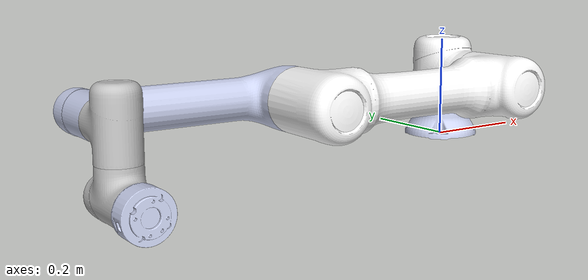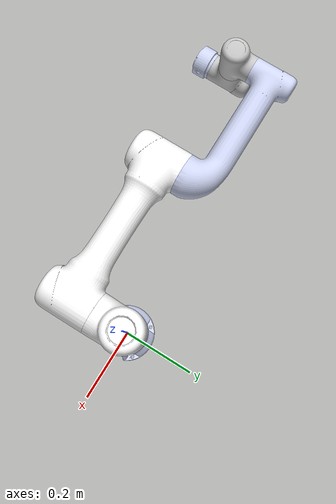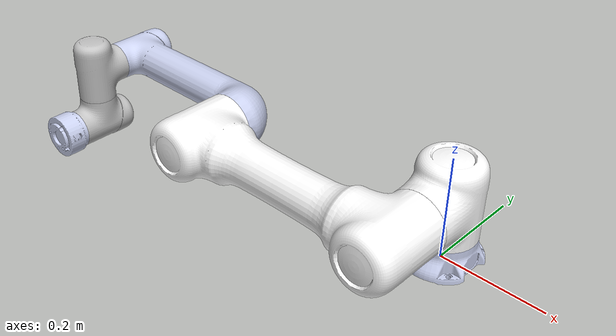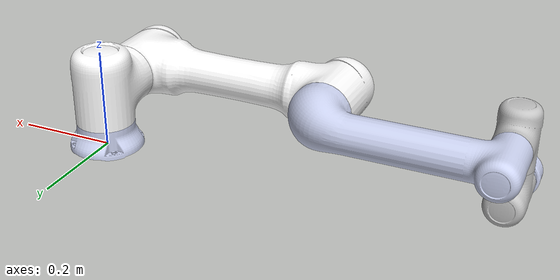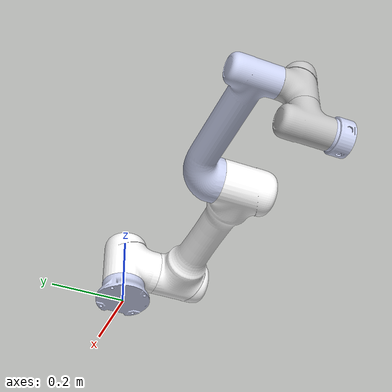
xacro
<robot
  name="S05" xmlns:xacro="http://www.ros.org/wiki/xacro">

  <xacro:include filename="$(find elfin_description)/urdf/materials.xacro" />

  <xacro:include filename="$(find elfin_description)/urdf/elfin_robot.gazebo" />

  <xacro:include filename="$(find elfin_description)/urdf/elfin_transmission.xacro" />

  <xacro:property name="PI" value="3.1415926535897931"/>

  <xacro:property name="density" value="3.09"/>

  <link name="world"/>

  <joint name="world_base" type="fixed">
    <origin
      xyz="0 0 0"
      rpy="0 0 0" />
    <parent
      link="world" />
    <child
      link="elfin_base_link" />
  </joint>

  <link name="elfin_base_link"/>

  <joint name="elfin_base_joint" type="fixed">
    <origin
      xyz="0 0 0"
      rpy="0 0 0" />
    <parent
      link="elfin_base_link" />
    <child
      link="elfin_base" />
  </joint>

  <link
    name="elfin_base">
    <inertial>
      <origin
        xyz="-0.00184437389934045 -6.59500650089517E-06 0.0222886005498919"
        rpy="0 0 0" />
      <mass
        value="0.55783758117095" />
      <inertia
        ixx="0.000806700377609497"
        ixy="6.54161076767138E-09"
        ixz="-9.10804623758884E-06"
        iyy="0.000742642782949531"
        iyz="-6.64350030616068E-08"
        izz="0.00132758561895542" />
    </inertial>
    <visual>
      <origin
        xyz="0 0 0"
        rpy="0 0 0" />
      <geometry>
        <mesh
          filename="package://elfin_description/meshes/S05/base_link.STL" />
      </geometry>
      <material
        name="">
        <color
          rgba="0.792156862745098 0.819607843137255 0.933333333333333 1" />
      </material>
    </visual>
    <collision>
      <origin
        xyz="0 0 0"
        rpy="0 0 0" />
      <geometry>
        <mesh
          filename="package://elfin_description/meshes/S05/base_link.STL" />
      </geometry>
    </collision>
  </link>
  <link
    name="elfin_link1">
    <inertial>
      <origin
        xyz="2.33055077716871E-06 -0.00901454466097123 0.0158738587496875"
        rpy="0 0 0" />
      <mass
        value="2.36455557143755" />
      <inertia
        ixx="0.00451183160259451"
        ixy="-3.26792558903691E-08"
        ixz="7.26054886062041E-08"
        iyy="0.00390660442055615"
        iyz="0.00049262309508953"
        izz="0.00502354133713084" />
    </inertial>
    <visual>
      <origin
        xyz="0 0 0"
        rpy="0 0 0" />
      <geometry>
        <mesh
          filename="package://elfin_description/meshes/S05/elfin_link1.STL" />
      </geometry>
      <material
        name="">
        <color
          rgba="1 1 1 1" />
      </material>
    </visual>
    <collision>
      <origin
        xyz="0 0 0"
        rpy="0 0 0" />
      <geometry>
        <mesh
          filename="package://elfin_description/meshes/S05/elfin_link1.STL" />
      </geometry>
    </collision>
  </link>
  <joint
    name="elfin_joint1"
    type="revolute">
    <origin
      xyz="0 0 0.1215"
      rpy="0 0 0" />
    <parent
      link="elfin_base" />
    <child
      link="elfin_link1" />
    <axis
      xyz="0 0 1" />
  <limit
      lower="-6.28"
      upper="6.28"
      effort="200"
      velocity="1.57" />
  </joint>
  <link
    name="elfin_link2">
    <inertial>
      <origin
        xyz="-0.215001381391909 1.2409870353558E-10 0.0117543388669855"
        rpy="0 0 0" />
      <mass
        value="6.38655762886868" />
      <inertia
        ixx="0.00942144948642947"
        ixy="5.76449595464818E-08"
        ixz="2.12022015866971E-08"
        iyy="0.0224664860505062"
        iyz="-4.19181341688528E-09"
        izz="0.0235010077945909" />
    </inertial>
    <visual>
      <origin
        xyz="0 0 0"
        rpy="0 0 0" />
      <geometry>
        <mesh
          filename="package://elfin_description/meshes/S05/elfin_link2.STL" />
      </geometry>
      <material
        name="">
        <color
          rgba="1 1 1 1" />
      </material>
    </visual>
    <collision>
      <origin
        xyz="0 0 0"
        rpy="0 0 0" />
      <geometry>
        <mesh
          filename="package://elfin_description/meshes/S05/elfin_link2.STL" />
      </geometry>
    </collision>
  </link>
  <joint
    name="elfin_joint2"
    type="revolute">
    <origin
      xyz="0 -0.1585 0"
      rpy="1.5708 0 0" />
    <parent
      link="elfin_link1" />
    <child
      link="elfin_link2" />
    <axis
      xyz="0 0 1" />
    <limit
      lower="-3.3158"
      upper="0.1745"
      effort="200"
      velocity="1.57" />
  </joint>
  <link
    name="elfin_link3">
    <inertial>
      <origin
        xyz="0.171912511860209 2.35345194220804E-05 0.00645788659236412"
        rpy="0 0 0" />
      <mass
        value="2.49272496396584" />
      <inertia
        ixx="0.00266933008860527"
        ixy="-8.56842520060561E-08"
        ixz="0.00178833260512255"
        iyy="0.0190553443992948"
        iyz="-4.05131339576263E-08"
        izz="0.018853980858375" />
    </inertial>
    <visual>
      <origin
        xyz="0 0 0"
        rpy="0 0 0" />
      <geometry>
        <mesh
          filename="package://elfin_description/meshes/S05/elfin_link3.STL" />
      </geometry>
      <material
        name="">
        <color
          rgba="0.792156862745098 0.819607843137255 0.933333333333333 1" />
      </material>
    </visual>
    <collision>
      <origin
        xyz="0 0 0"
        rpy="0 0 0" />
      <geometry>
        <mesh
          filename="package://elfin_description/meshes/S05/elfin_link3.STL" />
      </geometry>
    </collision>
  </link>
  <joint
    name="elfin_joint3"
    type="revolute">
    <origin
      xyz="-0.43 0 -0.1365"
      rpy="0 0 3.1416" />
    <parent
      link="elfin_link2" />
    <child
      link="elfin_link3" />
    <axis
      xyz="0 0 1" />
    <limit
      lower="-2.7574"
      upper="2.7574"
      effort="200"
      velocity="1.57" />
  </joint>
  <link
    name="elfin_link4">
    <inertial>
      <origin
        xyz="8.37197042898863E-05 -0.00267416471329009 0.1090185084264"
        rpy="0 0 0" />
      <mass
        value="0.694773050146191" />
      <inertia
        ixx="0.00073750625094689"
        ixy="1.74143972717691E-08"
        ixz="-7.45292744071859E-09"
        iyy="0.000647584979146833"
        iyz="-9.70101483056526E-05"
        izz="0.0006165532665288" />
    </inertial>
    <visual>
      <origin
        xyz="0 0 0"
        rpy="0 0 0" />
      <geometry>
        <mesh
          filename="package://elfin_description/meshes/S05/elfin_link4.STL" />
      </geometry>
      <material
        name="">
        <color
          rgba="0.752941176470588 0.752941176470588 0.752941176470588 1" />
      </material>
    </visual>
    <collision>
      <origin
        xyz="0 0 0"
        rpy="0 0 0" />
      <geometry>
        <mesh
          filename="package://elfin_description/meshes/S05/elfin_link4.STL" />
      </geometry>
    </collision>
  </link>
  <joint
    name="elfin_joint4"
    type="revolute">
    <origin
      xyz="0.353 0 0"
      rpy="0 0 0" />
    <parent
      link="elfin_link3" />
    <child
      link="elfin_link4" />
    <axis
      xyz="0 0 1" />
   <limit
      lower="-6.28"
      upper="6.28"
      effort="104"
      velocity="1.57" />
  </joint>
  <link
    name="elfin_link5">
    <inertial>
      <origin
        xyz="-8.37261709217829E-05 0.00267415249911426 0.109018502165499"
        rpy="0 0 0" />
      <mass
        value="0.694773165338235" />
      <inertia
        ixx="0.000737506036197175"
        ixy="1.68898703720491E-08"
        ixz="8.03428966986723E-09"
        iyy="0.000647584987534968"
        iyz="9.70101095674385E-05"
        izz="0.000616553577827236" />
    </inertial>
    <visual>
      <origin
        xyz="0 0 0"
        rpy="0 0 0" />
      <geometry>
        <mesh
          filename="package://elfin_description/meshes/S05/elfin_link5.STL" />
      </geometry>
      <material
        name="">
        <color
          rgba="0.752941176470588 0.752941176470588 0.752941176470588 1" />
      </material>
    </visual>
    <collision>
      <origin
        xyz="0 0 0"
        rpy="0 0 0" />
      <geometry>
        <mesh
          filename="package://elfin_description/meshes/S05/elfin_link5.STL" />
      </geometry>
    </collision>
  </link>
  <joint
    name="elfin_joint5"
    type="revolute">
    <origin
      xyz="0 0 0.117"
      rpy="-1.5708 0 0" />
    <parent
      link="elfin_link4" />
    <child
      link="elfin_link5" />
    <axis
      xyz="0 0 1" />
    <limit
      lower="-6.28"
      upper="6.28"
      effort="34"
      velocity="1.57" />
  </joint>
  <link
    name="elfin_link6">
    <inertial>
      <origin
        xyz="-6.99831683009799E-05 -0.00015585757870362 0.082463832632152"
        rpy="0 0 0" />
      <mass
        value="0.288177266982945" />
      <inertia
        ixx="0.000150217389612231"
        ixy="4.97910868291961E-07"
        ixz="3.36683190303104E-08"
        iyy="0.00014836141996132"
        iyz="-5.11427040028956E-08"
        izz="0.000248138450646936" />
    </inertial>
    <visual>
      <origin
        xyz="0 0 0"
        rpy="0 0 0" />
      <geometry>
        <mesh
          filename="package://elfin_description/meshes/S05/elfin_link6.STL" />
      </geometry>
      <material
        name="">
        <color
          rgba="0.792156862745098 0.819607843137255 0.933333333333333 1" />
      </material>
    </visual>
    <collision>
      <origin
        xyz="0 0 0"
        rpy="0 0 0" />
      <geometry>
        <mesh
          filename="package://elfin_description/meshes/S05/elfin_link6.STL" />
      </geometry>
    </collision>
  </link>
  <joint
    name="elfin_joint6"
    type="revolute">
    <origin
      xyz="0 0 0.117"
      rpy="1.5708 0 0" />
    <parent
      link="elfin_link5" />
    <child
      link="elfin_link6" />
    <axis
      xyz="0 0 1" />
    <limit
      lower="-6.28"
      upper="6.28"
      effort="34"
      velocity="1.57" />
  </joint>
  <link
    name="elfin_end_link">
  </link>
  <joint
    name="elfin_end_joint"
    type="fixed">
    <origin
      xyz="0 0 0.11"
      rpy="0 0 -3.1416" />
    <parent
      link="elfin_link6" />
    <child
      link="elfin_end_link" />
  </joint>

  <link name="elfin_dummy_gripper"/>

  <joint name="elfin_dummy_joint" type="fixed">
    <origin
      xyz="0 -0.0935 0"
      rpy="${PI/2} ${PI/2} 0" />
    <parent
      link="elfin_link6" />
    <child
      link="elfin_dummy_gripper" />
  </joint>

</robot>
